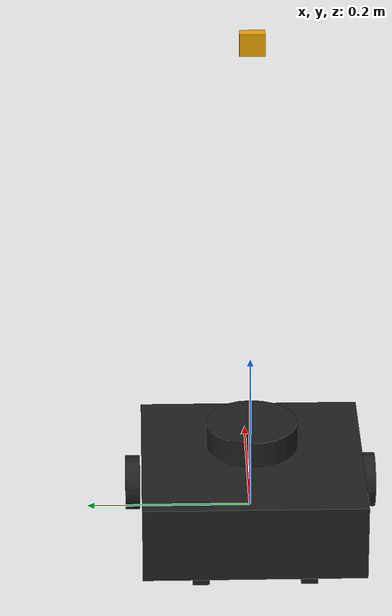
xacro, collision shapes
<?xml version="1.0" ?>
<robot name="turtlebot3_waffle_pi" xmlns:xacro="http://ros.org/wiki/xacro">
  <xacro:include filename="$(find turtlebot3_description)/urdf/common_properties.xacro"/>
  <xacro:include filename="$(find turtlebot3_description)/urdf/turtlebot3_waffle_pi.gazebo.xacro"/>

  <link name="base_footprint"/>

  <joint name="base_joint" type="fixed">
    <parent link="base_footprint"/>
    <child link="base_link" />
    <origin xyz="0 0 0.010" rpy="0 0 0"/>
  </joint>

  <link name="base_link">
    <visual>
      <origin xyz="-0.064 0 0.0" rpy="0 0 0"/>
      <geometry>
        <mesh filename="package://turtlebot3_description/meshes/bases/waffle_pi_base.stl" scale="0.001 0.001 0.001"/>
      </geometry>
      <material name="light_black"/>
    </visual>

    <collision>
      <origin xyz="-0.064 0 0.047" rpy="0 0 0"/>
      <geometry>
        <box size="0.266 0.266 0.094"/>
      </geometry>
    </collision>

    <inertial>
      <origin xyz="0 0 0" rpy="0 0 0"/>
      <mass value="1.3729096e+00"/>
      <inertia ixx="8.7002718e-03" ixy="-4.7576583e-05" ixz="1.1160499e-04"
               iyy="8.6195418e-03" iyz="-3.5422299e-06"
               izz="1.4612727e-02" />
    </inertial>
  </link>

  <joint name="wheel_left_joint" type="continuous">
    <parent link="base_link"/>
    <child link="wheel_left_link"/>
    <origin xyz="0.0 0.144 0.023" rpy="-1.57 0 0"/>
    <axis xyz="0 0 1"/>
  </joint>

  <link name="wheel_left_link">
    <visual>
      <origin xyz="0 0 0" rpy="1.57 0 0"/>
      <geometry>
        <mesh filename="package://turtlebot3_description/meshes/wheels/left_tire.stl" scale="0.001 0.001 0.001"/>
      </geometry>
      <material name="dark"/>
    </visual>

    <collision>
      <origin xyz="0 0 0" rpy="0 0 0"/>
      <geometry>
        <cylinder length="0.018" radius="0.033"/>
      </geometry>
    </collision>

    <inertial>
      <origin xyz="0 0 0" />
      <mass value="2.8498940e-02" />
      <inertia ixx="1.1175580e-05" ixy="-4.2369783e-11" ixz="-5.9381719e-09"
               iyy="1.1192413e-05" iyz="-1.4400107e-11"
               izz="2.0712558e-05" />
      </inertial>
  </link>

  <joint name="wheel_right_joint" type="continuous">
    <parent link="base_link"/>
    <child link="wheel_right_link"/>
    <origin xyz="0.0 -0.144 0.023" rpy="-1.57 0 0"/>
    <axis xyz="0 0 1"/>
  </joint>

  <link name="wheel_right_link">
    <visual>
      <origin xyz="0 0 0" rpy="1.57 0 0"/>
      <geometry>
        <mesh filename="package://turtlebot3_description/meshes/wheels/right_tire.stl" scale="0.001 0.001 0.001"/>
      </geometry>
      <material name="dark"/>
    </visual>

    <collision>
      <origin xyz="0 0 0" rpy="0 0 0"/>
      <geometry>
        <cylinder length="0.018" radius="0.033"/>
      </geometry>
    </collision>

    <inertial>
      <origin xyz="0 0 0" />
      <mass value="2.8498940e-02" />
      <inertia ixx="1.1175580e-05" ixy="-4.2369783e-11" ixz="-5.9381719e-09"
               iyy="1.1192413e-05" iyz="-1.4400107e-11"
               izz="2.0712558e-05" />
      </inertial>
  </link>

  <joint name="caster_back_right_joint" type="fixed">
    <parent link="base_link"/>
    <child link="caster_back_right_link"/>
    <origin xyz="-0.177 -0.064 -0.004" rpy="-1.57 0 0"/>
  </joint>

  <link name="caster_back_right_link">
    <collision>
      <origin xyz="0 0.001 0" rpy="0 0 0"/>
      <geometry>
        <box size="0.030 0.009 0.020"/>
      </geometry>
    </collision>

    <inertial>
      <origin xyz="0 0 0" />
      <mass value="0.005" />
      <inertia ixx="0.001" ixy="0.0" ixz="0.0"
               iyy="0.001" iyz="0.0"
               izz="0.001" />
    </inertial>
  </link>

  <joint name="caster_back_left_joint" type="fixed">
    <parent link="base_link"/>
    <child link="caster_back_left_link"/>
    <origin xyz="-0.177 0.064 -0.004" rpy="-1.57 0 0"/>
  </joint>

  <link name="caster_back_left_link">
    <collision>
      <origin xyz="0 0.001 0" rpy="0 0 0"/>
      <geometry>
        <box size="0.030 0.009 0.020"/>
      </geometry>
    </collision>

    <inertial>
      <origin xyz="0 0 0" />
      <mass value="0.005" />
      <inertia ixx="0.001" ixy="0.0" ixz="0.0"
               iyy="0.001" iyz="0.0"
               izz="0.001" />
    </inertial>
  </link>

  <joint name="imu_joint" type="fixed">
    <parent link="base_link"/>
    <child link="imu_link"/>
    <origin xyz="0.0 0 0.068" rpy="0 0 0"/>
  </joint>

  <link name="imu_link"/>

  <joint name="scan_joint" type="fixed">
    <parent link="base_link"/>
    <child link="base_scan"/>
    <origin xyz="-0.064 0 0.122" rpy="0 0 0"/>
  </joint>

  <link name="base_scan">
    <visual>
      <origin xyz="0 0 0.0" rpy="0 0 0"/>
      <geometry>
        <mesh filename="package://turtlebot3_description/meshes/sensors/lds.stl" scale="0.001 0.001 0.001"/>
      </geometry>
      <material name="dark"/>
    </visual>

    <collision>
      <origin xyz="0.015 0 -0.0065" rpy="0 0 0"/>
      <geometry>
        <cylinder length="0.0315" radius="0.055"/>
      </geometry>
    </collision>

    <inertial>
      <mass value="0.114" />
      <origin xyz="0 0 0" />
      <inertia ixx="0.001" ixy="0.0" ixz="0.0"
               iyy="0.001" iyz="0.0"
               izz="0.001" />
    </inertial>
  </link>

  <joint name="camera_joint" type="fixed">
    <origin xyz="0 0 0.6" rpy="0 0 0"/>
    <parent link="base_link"/>
    <child link="camera_link"/>
  </joint>

  <link name="camera_link">
    <collision>
      <origin xyz="0 0 0" rpy="0 0 0"/>
      <geometry>
        <box size="0.015 0.030 0.027"/>
      </geometry>
    </collision>
  </link>

  <!--front-->
  <!--left-->
  <joint name="camera_rgb_front_left_joint" type="fixed">
    <origin xyz="0 0.2 0" rpy="1.57 0 0"/>
    <parent link="camera_link"/>
    <child link="omnidirectional_camera_front_left_frame"/>
  </joint>
  <link name="omnidirectional_camera_front_left_frame"/>

  <joint name="camera_rgb_optical_front_left_joint" type="fixed">
    <origin xyz="0 0 0" rpy="0 0 0"/>
    <parent link="omnidirectional_camera_front_left_frame"/>
    <child link="camera_rgb_optical_front_left_frame"/>
  </joint>
  <link name="camera_rgb_optical_front_left_frame"/>

  <!--right-->
  <joint name="camera_rgb_front_right_joint" type="fixed">
    <origin xyz="0 -0.2 0" rpy="1.57 0 0"/>
    <parent link="camera_link"/>
    <child link="omnidirectional_camera_front_right_frame"/>
  </joint>
  <link name="omnidirectional_camera_front_right_frame"/>

  <joint name="camera_rgb_optical_front_right_joint" type="fixed">
    <origin xyz="0 0 0" rpy="0 0 0"/>
    <parent link="omnidirectional_camera_front_right_frame"/>
    <child link="camera_rgb_optical_front_right_frame"/>
  </joint>
  <link name="camera_rgb_optical_front_right_frame"/>

  <!--center-->
  <joint name="camera_rgb_front_joint" type="fixed">
    <origin xyz="0 0 0" rpy="1.57 0 0"/>
    <parent link="camera_link"/>
    <child link="omnidirectional_camera_front_frame"/>
  </joint>
  <link name="omnidirectional_camera_front_frame"/>

  <joint name="camera_rgb_optical_front_joint" type="fixed">
    <origin xyz="0 0 0" rpy="0 0 0"/>
    <parent link="omnidirectional_camera_front_frame"/>
    <child link="camera_rgb_optical_front_frame"/>
  </joint>
  <link name="camera_rgb_optical_front_frame"/>

  <!--back-->
  <!--left-->
  <joint name="camera_rgb_back_left_joint" type="fixed">
    <origin xyz="0 0.2 0" rpy="-1.57 0 3.14"/>
    <parent link="camera_link"/>
    <child link="omnidirectional_camera_back_left_frame"/>
  </joint>
  <link name="omnidirectional_camera_back_left_frame"/>

  <joint name="camera_rgb_optical_back_left_joint" type="fixed">
    <origin xyz="0 0 0" rpy="0 0 0"/>
    <parent link="omnidirectional_camera_back_left_frame"/>
    <child link="camera_rgb_optical_back_left_frame"/>
  </joint>
  <link name="camera_rgb_optical_back_left_frame"/>

  <!--right-->
  <joint name="camera_rgb_back_right_joint" type="fixed">
    <origin xyz="0 -0.2 0" rpy="-1.57 0 3.14"/>
    <parent link="camera_link"/>
    <child link="omnidirectional_camera_back_right_frame"/>
  </joint>
  <link name="omnidirectional_camera_back_right_frame"/>

  <joint name="camera_rgb_optical_back_right_joint" type="fixed">
    <origin xyz="0 0 0" rpy="0 0 0"/>
    <parent link="omnidirectional_camera_back_right_frame"/>
    <child link="camera_rgb_optical_back_right_frame"/>
  </joint>
  <link name="camera_rgb_optical_back_right_frame"/>

  <!--center-->
  <joint name="camera_rgb_back_joint" type="fixed">
    <origin xyz="0 0 0" rpy="-1.57 0 3.14"/>
    <parent link="camera_link"/>
    <child link="omnidirectional_camera_back_frame"/>
  </joint>
  <link name="omnidirectional_camera_back_frame"/>

  <joint name="camera_rgb_optical_back_joint" type="fixed">
    <origin xyz="0 0 0" rpy="0 0 0"/>
    <parent link="omnidirectional_camera_back_frame"/>
    <child link="camera_rgb_optical_back_frame"/>
  </joint>
  <link name="camera_rgb_optical_back_frame"/>

</robot>
